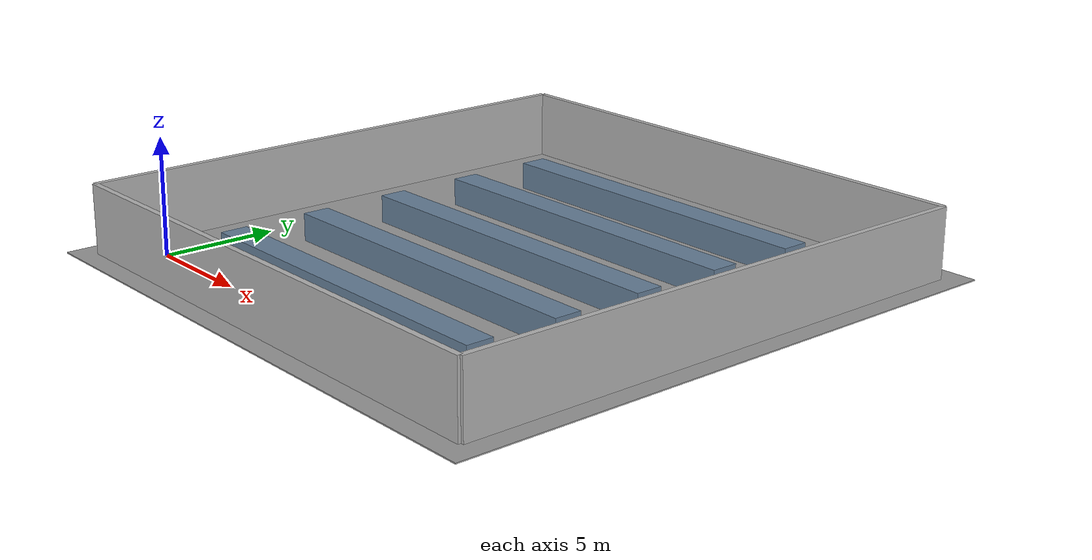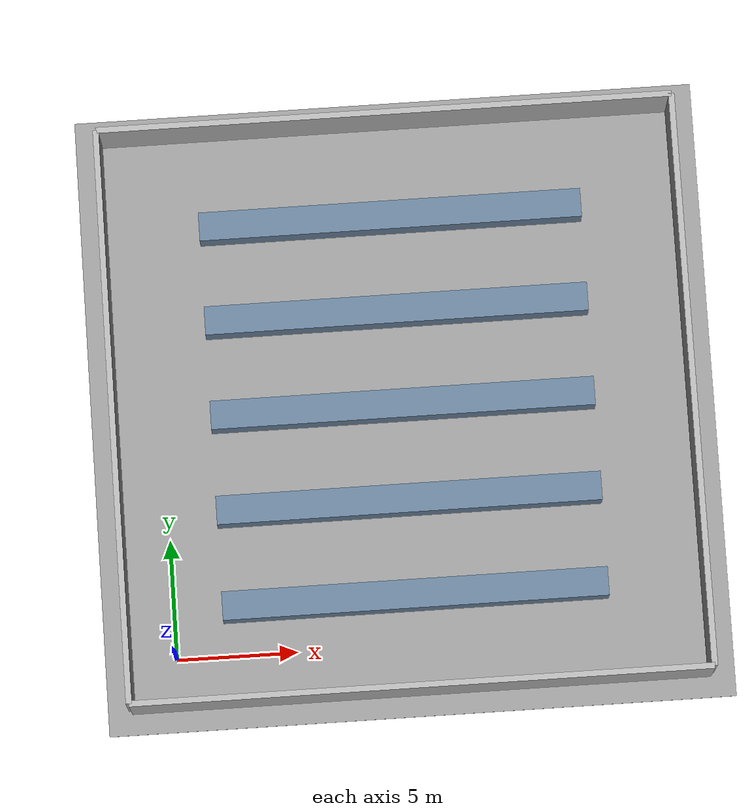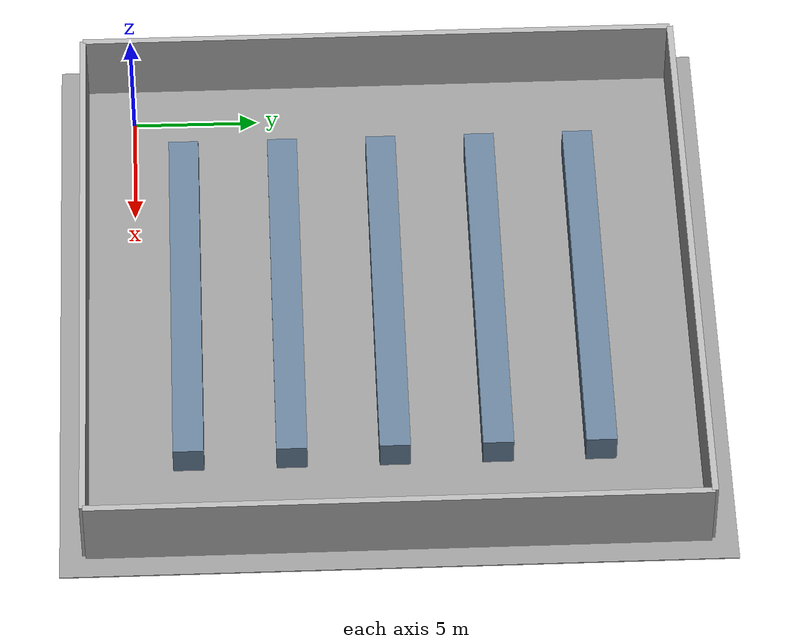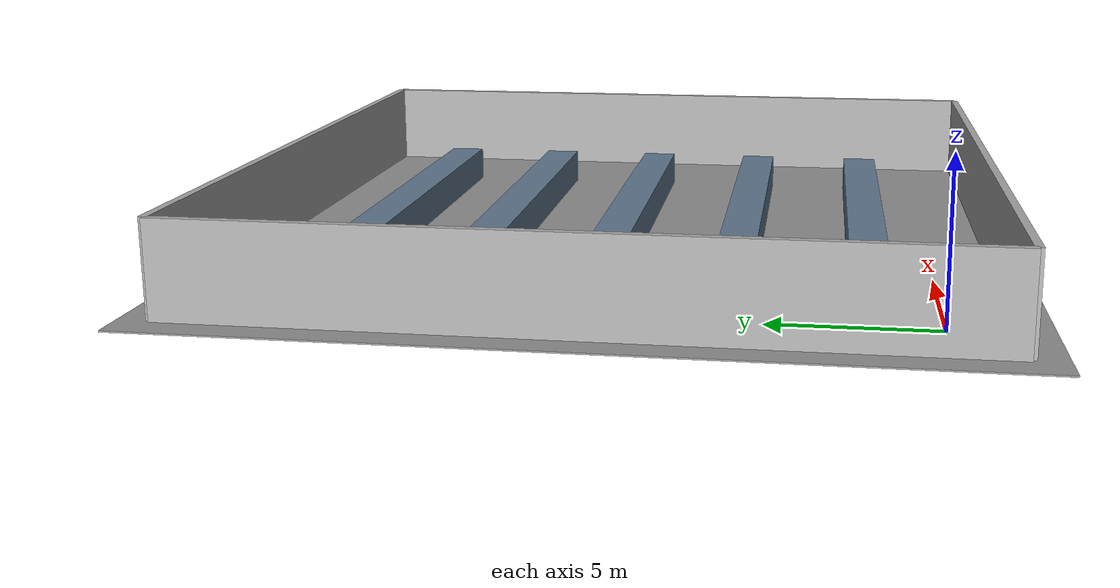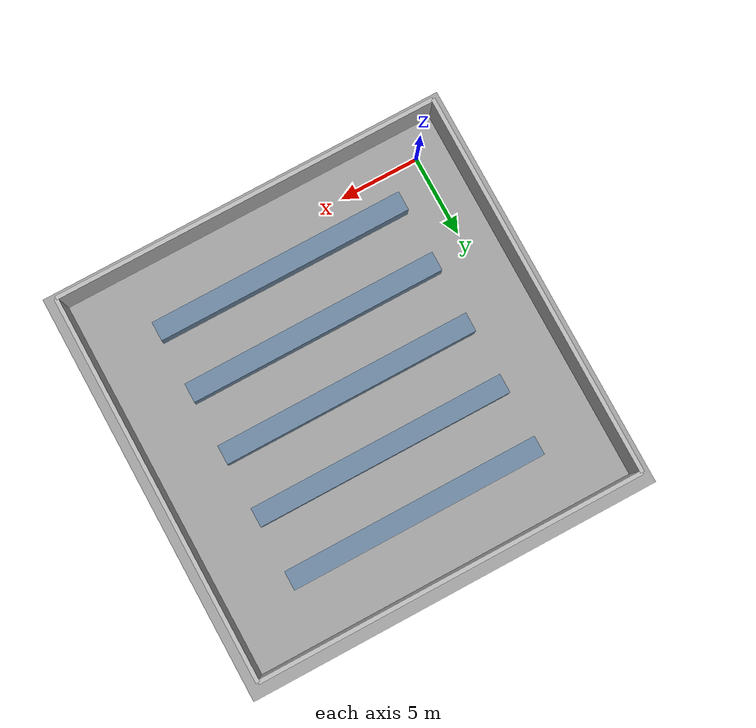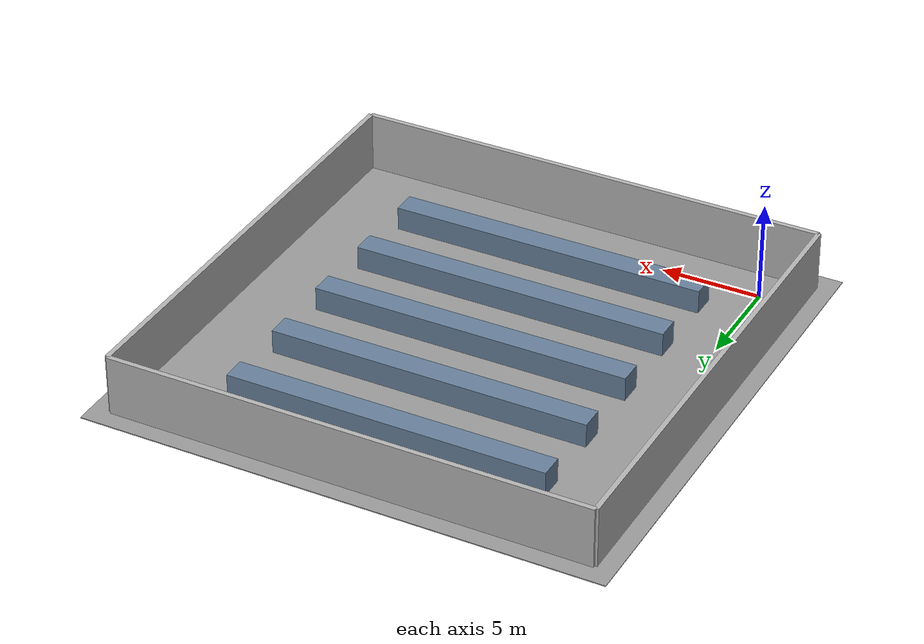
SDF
<?xml version="1.0"?>
<sdf version="1.6">
  <world name="factory_environment">
    <!-- Direct Light to prevent online fetching -->
    <!-- ==================== sun：方向光 ==================== -->
    <!-- 内置方向光：从 (-0.5, 0.1, -0.9) 方向照射，开阴影，
         衰减范围 1000m，避免依赖在线 sun 模型。 -->
    <light name="sun" type="directional">
      <cast_shadows>1</cast_shadows>
      <pose>0 0 10 0 0 0</pose>
      <diffuse>0.8 0.8 0.8 1</diffuse>
      <specular>0.2 0.2 0.2 1</specular>
      <attenuation>
        <range>1000</range>
        <constant>0.9</constant>
        <linear>0.01</linear>
        <quadratic>0.001</quadratic>
      </attenuation>
      <direction>-0.5 0.1 -0.9</direction>
    </light>

    <!-- Ground -->
    <!-- ==================== ground：地面 ==================== -->
    <!-- 静态地面：26m × 26m × 0.05m，整体位于 (10, 10) 中心，
         使场地有效范围约为 x/y ∈ [0, 20]（与巡检点坐标对齐）。 -->
    <model name="ground">
      <static>true</static>
      <link name="ground_link">
        <collision name="collision">
          <geometry><box><size>26 26 0.05</size></box></geometry>
        </collision>
        <visual name="visual">
          <geometry><box><size>26 26 0.05</size></box></geometry>
          <material>
            <ambient>0.6 0.6 0.6 1</ambient>
            <diffuse>0.6 0.6 0.6 1</diffuse>
          </material>
        </visual>
      </link>
      <pose>10 10 -0.025 0 0 0</pose>
    </model>

    <!-- Walls -->
    <!-- ==================== 四面围墙 ==================== -->
    <!-- 北墙（y=22）、南墙（y=-2）、西墙（x=-2）、东墙（x=22）：
         均为 24m 长 × 0.25m 厚 × 3.0m 高的静态墙体，围成
         [0,20]×[0,20] 的有效导航区域。 -->
    <model name="north_wall">
      <static>true</static>
      <pose>10 22 1.5 0 0 0</pose>
      <link name="link">
        <collision name="collision"><geometry><box><size>24 0.25 3.0</size></box></geometry></collision>
        <visual name="visual"><geometry><box><size>24 0.25 3.0</size></box></geometry><material><ambient>0.7 0.7 0.7 1</ambient><diffuse>0.7 0.7 0.7 1</diffuse></material></visual>
      </link>
    </model>
    <model name="south_wall">
      <static>true</static>
      <pose>10 -2 1.5 0 0 0</pose>
      <link name="link">
        <collision name="collision"><geometry><box><size>24 0.25 3.0</size></box></geometry></collision>
        <visual name="visual"><geometry><box><size>24 0.25 3.0</size></box></geometry><material><ambient>0.7 0.7 0.7 1</ambient><diffuse>0.7 0.7 0.7 1</diffuse></material></visual>
      </link>
    </model>
    <model name="west_wall">
      <static>true</static>
      <pose>-2 10 1.5 0 0 0</pose>
      <link name="link">
        <collision name="collision"><geometry><box><size>0.25 24 3.0</size></box></geometry></collision>
        <visual name="visual"><geometry><box><size>0.25 24 3.0</size></box></geometry><material><ambient>0.7 0.7 0.7 1</ambient><diffuse>0.7 0.7 0.7 1</diffuse></material></visual>
      </link>
    </model>
    <model name="east_wall">
      <static>true</static>
      <pose>22 10 1.5 0 0 0</pose>
      <link name="link">
        <collision name="collision"><geometry><box><size>0.25 24 3.0</size></box></geometry></collision>
        <visual name="visual"><geometry><box><size>0.25 24 3.0</size></box></geometry><material><ambient>0.7 0.7 0.7 1</ambient><diffuse>0.7 0.7 0.7 1</diffuse></material></visual>
      </link>
    </model>

    <!-- 5 Rows of Desks/Machines with 4m spacing -->
    <!-- ==================== 5 排工作台（desk_row_1~5） ==================== -->
    <!-- 静态设备排：每排 16m × 1.2m × 1.2m，位于 x=10 沿 y 方向
         每 4m 一排（y=18/14/10/6/2），将场地分割成
         y=4/8/12/16/20 五条东西向巡检通道。 -->
    <model name="desk_row_1">
      <static>true</static>
      <pose>10 18 0.6 0 0 0</pose>
      <link name="link">
        <collision name="collision"><geometry><box><size>16 1.2 1.2</size></box></geometry></collision>
        <visual name="visual"><geometry><box><size>16 1.2 1.2</size></box></geometry><material><ambient>0.4 0.5 0.6 1</ambient><diffuse>0.4 0.5 0.6 1</diffuse></material></visual>
      </link>
    </model>
    <model name="desk_row_2">
      <static>true</static>
      <pose>10 14 0.6 0 0 0</pose>
      <link name="link">
        <collision name="collision"><geometry><box><size>16 1.2 1.2</size></box></geometry></collision>
        <visual name="visual"><geometry><box><size>16 1.2 1.2</size></box></geometry><material><ambient>0.4 0.5 0.6 1</ambient><diffuse>0.4 0.5 0.6 1</diffuse></material></visual>
      </link>
    </model>
    <model name="desk_row_3">
      <static>true</static>
      <pose>10 10 0.6 0 0 0</pose>
      <link name="link">
        <collision name="collision"><geometry><box><size>16 1.2 1.2</size></box></geometry></collision>
        <visual name="visual"><geometry><box><size>16 1.2 1.2</size></box></geometry><material><ambient>0.4 0.5 0.6 1</ambient><diffuse>0.4 0.5 0.6 1</diffuse></material></visual>
      </link>
    </model>
    <model name="desk_row_4">
      <static>true</static>
      <pose>10 6 0.6 0 0 0</pose>
      <link name="link">
        <collision name="collision"><geometry><box><size>16 1.2 1.2</size></box></geometry></collision>
        <visual name="visual"><geometry><box><size>16 1.2 1.2</size></box></geometry><material><ambient>0.4 0.5 0.6 1</ambient><diffuse>0.4 0.5 0.6 1</diffuse></material></visual>
      </link>
    </model>
    <model name="desk_row_5">
      <static>true</static>
      <pose>10 2 0.6 0 0 0</pose>
      <link name="link">
        <collision name="collision"><geometry><box><size>16 1.2 1.2</size></box></geometry></collision>
        <visual name="visual"><geometry><box><size>16 1.2 1.2</size></box></geometry><material><ambient>0.4 0.5 0.6 1</ambient><diffuse>0.4 0.5 0.6 1</diffuse></material></visual>
      </link>
    </model>

    <!-- 建图世界到此结束：禁止加入动态或临时障碍。 -->

  </world>
</sdf>
